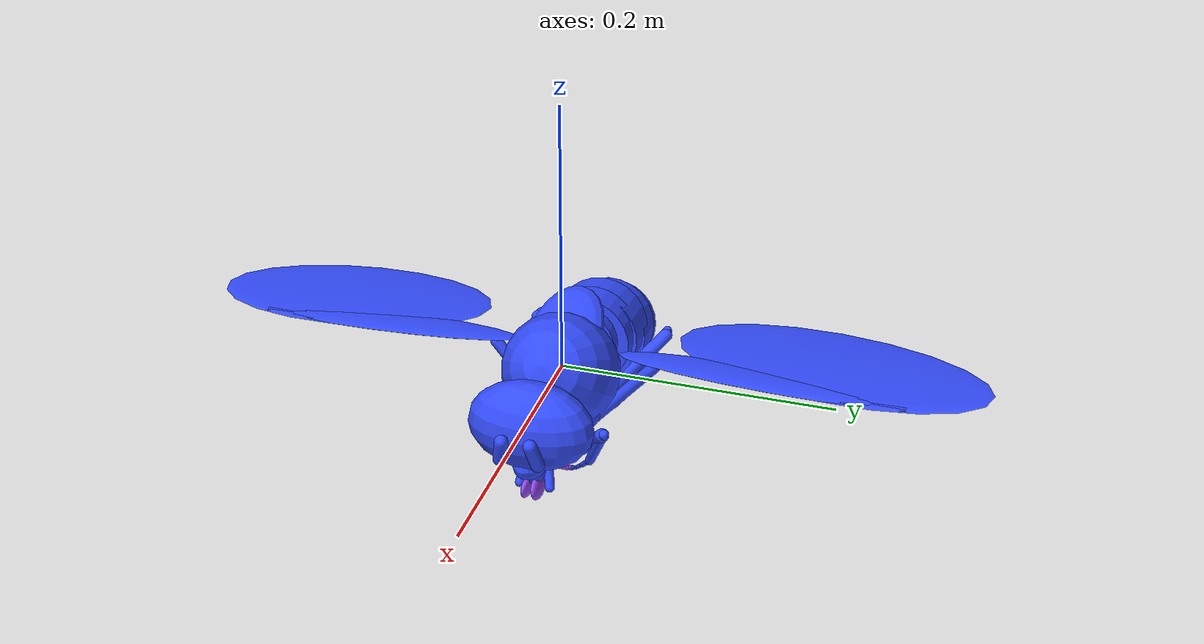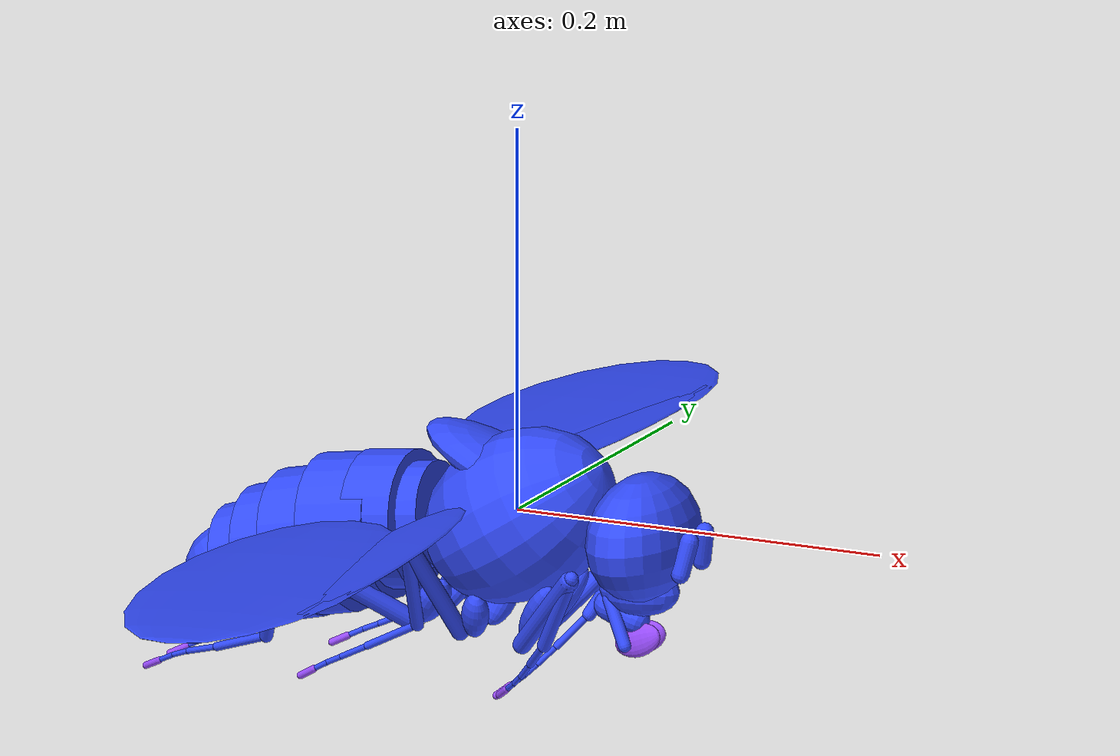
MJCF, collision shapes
<mujoco model="fruitfly">
  <compiler angle="radian"/>

  <option timestep="0.0001" gravity="0 0 -981" density="0.00128" viscosity="0.000185" cone="elliptic"/>

  <size njmax="300" nconmax="100" nkey="1"/>

  <visual>
    <global offwidth="3840" offheight="2160"/>
    <quality shadowsize="8192" offsamples="24"/>
    <headlight ambient="0.4 0.4 0.4" diffuse="0.8 0.8 0.8" specular="0.1 0.1 0.1"/>
    <map stiffness="10000" stiffnessrot="50000" force="2e-05"/>
    <scale jointwidth="0.01" framewidth="0.01"/>
  </visual>

  <statistic meansize="0.02"/>

  <default>
    <mesh scale="0.1 0.1 0.1"/>
    <geom friction="0.5" solref="0.0002" solimp="0.95 0.99 0.01"/>
    <general ctrllimited="true"/>
    <default class="body">
      <joint solreflimit="0.001" limited="true" armature="1e-06"/>
      <geom type="mesh" contype="0" conaffinity="0" group="1" density="0.478" material="body"/>
      <site size="0.01 0.005 0.005" group="3"/>
      <default class="collision">
        <geom type="capsule" contype="1" conaffinity="1" condim="1" group="4" density="0" material="blue"/>
        <default class="adhesion-collision">
          <geom friction="0.6" margin="0.0005" gap="0.0005" material="pink"/>
          <site type="capsule"/>
        </default>
        <default class="collision-membrane">
          <geom group="5"/>
        </default>
      </default>
      <default class="adhesion">
        <default class="adhesion_claw">
          <general group="3" ctrlrange="0 1" gainprm="0.985"/>
        </default>
        <default class="adhesion_labrum">
          <general group="3" ctrlrange="0 1"/>
        </default>
      </default>
      <default class="head">
        <joint stiffness="0.03" damping="0.001"/>
        <geom density="0.713"/>
        <general forcerange="-0.1 0.1" biastype="affine" gainprm="0.1" biasprm="0 -0.1"/>
        <default class="labrum">
          <general forcerange="-0.01 0.01" gainprm="0.01" biasprm="0 -0.01"/>
        </default>
      </default>
      <default class="antenna">
        <joint damping="0.0003"/>
        <general forcerange="-0.01 0.01" biastype="affine" gainprm="0.01" biasprm="0 -0.01"/>
        <default class="antenna_extend">
          <joint range="-0.2 0.5"/>
        </default>
        <default class="antenna_twist">
          <joint range="-0.1 0.09"/>
        </default>
        <default class="antenna_abduct">
          <joint range="-0.4 0.8"/>
        </default>
      </default>
      <default class="wing">
        <joint stiffness="0.01" damping="0.0005"/>
        <general ctrlrange="-1 1"/>
        <default class="yaw">
          <joint springref="1.5" range="-1.5 1.5"/>
          <general gainprm="3"/>
        </default>
        <default class="roll">
          <joint springref="0.7" range="-1 1.5"/>
          <general gainprm="2"/>
        </default>
        <default class="pitch">
          <joint springref="-1" range="-1.27 2.92"/>
        </default>
        <default class="wing-inertial">
          <geom type="box" rgba="0 0 0 0"/>
        </default>
        <default class="wing-fluid">
          <geom type="ellipsoid" group="3"/>
        </default>
      </default>
      <default class="abdomen">
        <joint group="3" stiffness="0.05" damping="0.01"/>
        <geom density="0.555"/>
        <general biastype="affine" gainprm="0.1" biasprm="0 -0.1"/>
        <default class="abduct_abdomen">
          <joint range="-0.1 0.1"/>
        </default>
        <default class="extend_abdomen">
          <joint range="-0.15 0.1"/>
        </default>
      </default>
      <default class="haltere">
        <joint range="-0.2 0.2"/>
      </default>
      <default class="leg">
        <joint stiffness="0.01" damping="0.01"/>
        <geom density="1.18"/>
        <default class="coxa">
          <general biastype="affine" gainprm="0.8" biasprm="0 -0.8"/>
          <default class="twist_coxa_T1">
            <joint range="-0.8 0.8"/>
            <general ctrlrange="-0.8 0.8"/>
          </default>
          <default class="abduct_coxa_T1">
            <joint range="-1 0.7"/>
            <general ctrlrange="-1 0.7"/>
          </default>
          <default class="extend_coxa_T1">
            <joint springref="0.0584" range="-0.2 1.7"/>
            <general ctrlrange="-0.2 1.7"/>
          </default>
          <default class="twist_coxa_T2">
            <joint springref="-0.742" range="-0.75 0.8"/>
            <general ctrlrange="-0.75 0.8"/>
          </default>
          <default class="abduct_coxa_T2">
            <joint springref="-0.292" range="-0.5 0.3"/>
            <general ctrlrange="-0.5 0.3"/>
          </default>
          <default class="extend_coxa_T2">
            <joint springref="0.408" range="-0.2 0.9"/>
            <general ctrlrange="-0.2 0.9"/>
          </default>
          <default class="twist_coxa_T3">
            <joint springref="0.00841" range="-0.15 0.8"/>
            <general ctrlrange="-0.15 0.8"/>
          </default>
          <default class="abduct_coxa_T3">
            <joint range="-0.9 0.25"/>
            <general ctrlrange="-0.9 0.25"/>
          </default>
          <default class="extend_coxa_T3">
            <joint springref="0.158" range="-0.3 1.3"/>
            <general ctrlrange="-0.3 1.3"/>
          </default>
        </default>
        <default class="femur">
          <general biastype="affine" gainprm="0.8" biasprm="0 -0.8"/>
          <default class="twist_femur">
            <joint range="-1 1"/>
            <general ctrlrange="-1 1"/>
            <default class="twist_femur_T2">
              <joint springref="0.608"/>
            </default>
            <default class="twist_femur_T3">
              <joint springref="0.558"/>
            </default>
          </default>
          <default class="extend_femur">
            <joint range="-0.15 2"/>
            <general ctrlrange="-0.15 2"/>
            <default class="extend_femur_T1">
              <joint springref="-0.142"/>
            </default>
            <default class="extend_femur_T2">
              <joint springref="0.208"/>
            </default>
          </default>
          <default class="extend_femur_T3">
            <joint springref="0.258" range="-0.7 1.5"/>
            <general ctrlrange="-0.7 1.5"/>
          </default>
        </default>
        <default class="tibia">
          <joint damping="0.004"/>
          <general biastype="affine" gainprm="0.4" biasprm="0 -0.4"/>
          <default class="extend_tibia">
            <joint springref="-1.29" range="-1.35 1.3"/>
            <general ctrlrange="-1.35 1.3"/>
            <default class="extend_tibia_T2">
              <joint springref="-1.34"/>
            </default>
            <default class="extend_tibia_T3">
              <joint springref="-0.292"/>
            </default>
          </default>
        </default>
        <default class="tarsus">
          <general biastype="affine" gainprm="0.4" biasprm="0 -0.4"/>
          <default class="extend_tarsus_T1">
            <joint springref="-0.242" range="-0.7 1.2"/>
            <general ctrlrange="-0.7 1.2"/>
          </default>
          <default class="extend_tarsus_T2">
            <joint springref="0.608" range="-1 1.8"/>
            <general ctrlrange="-1 1.8"/>
          </default>
          <default class="extend_tarsus_T3">
            <joint springref="0.258" range="-0.8 1.2"/>
            <general ctrlrange="-0.8 1.2"/>
          </default>
          <default class="extend_tarsus">
            <joint group="3" stiffness="0.1" range="-0.36 0.36" damping="0.002"/>
            <general ctrlrange="-0.36 0.36"/>
          </default>
        </default>
      </default>
    </default>
  </default>

  <asset>
    <material name="body" shininess="0.6" rgba="0.674 0.35 0.143 1"/>
    <material name="red" shininess="0.692" rgba="0.8 0.0279 0.00154 1"/>
    <material name="ocelli" shininess="1" rgba="0.128 0.0488 0.0154 1"/>
    <material name="black" shininess="0.727" rgba="0 0 0 1"/>
    <material name="bristle-brown" shininess="0.907" rgba="0 0 0 1"/>
    <material name="lower" shininess="0.6" rgba="0.799 0.61 0.386 1"/>
    <material name="brown" shininess="0.6" rgba="0.202 0.0782 0.0262 1"/>
    <material name="membrane" specular="0.62" shininess="0.907" rgba="0.539 0.686 0.8 0.4"/>
    <material name="blue" shininess="0.6" rgba="0.2 0.3 1 1"/>
    <material name="pink" rgba="0.6 0.3 1 1"/>
    <mesh name="head" content_type="model/stl" file="head_body.stl"/>
    <mesh name="head_red" content_type="model/stl" file="head_red.stl"/>
    <mesh name="head_ocelli" content_type="model/stl" file="head_ocelli.stl"/>
    <mesh name="head_black" content_type="model/stl" file="head_black.stl"/>
    <mesh name="haustellum" content_type="model/stl" file="haustellum_body.stl"/>
    <mesh name="haustellum_black" content_type="model/stl" file="haustellum_black.stl"/>
    <mesh name="rostrum" content_type="model/stl" file="rostrum_body.stl"/>
    <mesh name="rostrum_bristle-brown" content_type="model/stl" file="rostrum_bristle-brown.stl"/>
    <mesh name="labrum_left_lower" content_type="model/stl" file="labrum_left_lower.stl"/>
    <mesh name="wing_left_brown" content_type="model/stl" file="wing_left_brown.stl"/>
    <mesh name="wing_left_membrane" content_type="model/stl" file="wing_left_membrane.stl"/>
    <mesh name="antenna_left" content_type="model/stl" file="antenna_left_body.stl"/>
    <mesh name="antenna_left_black" content_type="model/stl" file="antenna_left_black.stl"/>
    <mesh name="haltere_left" content_type="model/stl" file="haltere_left_body.stl"/>
    <mesh name="labrum_right_lower" content_type="model/stl" file="labrum_right_lower.stl"/>
    <mesh name="wing_right_brown" content_type="model/stl" file="wing_right_brown.stl"/>
    <mesh name="wing_right_membrane" content_type="model/stl" file="wing_right_membrane.stl"/>
    <mesh name="antenna_right" content_type="model/stl" file="antenna_right_body.stl"/>
    <mesh name="antenna_right_black" content_type="model/stl" file="antenna_right_black.stl"/>
    <mesh name="haltere_right" content_type="model/stl" file="haltere_right_body.stl"/>
    <mesh name="thorax" content_type="model/stl" file="thorax_body.stl"/>
    <mesh name="thorax_black" content_type="model/stl" file="thorax_black.stl"/>
    <mesh name="abdomen_1" content_type="model/stl" file="abdomen_1_body.stl"/>
    <mesh name="abdomen_1_lower" content_type="model/stl" file="abdomen_1_lower.stl"/>
    <mesh name="abdomen_2" content_type="model/stl" file="abdomen_2_body.stl"/>
    <mesh name="abdomen_2_lower" content_type="model/stl" file="abdomen_2_lower.stl"/>
    <mesh name="abdomen_3" content_type="model/stl" file="abdomen_3_body.stl"/>
    <mesh name="abdomen_3_lower" content_type="model/stl" file="abdomen_3_lower.stl"/>
    <mesh name="abdomen_4" content_type="model/stl" file="abdomen_4_body.stl"/>
    <mesh name="abdomen_4_lower" content_type="model/stl" file="abdomen_4_lower.stl"/>
    <mesh name="abdomen_5" content_type="model/stl" file="abdomen_5_body.stl"/>
    <mesh name="abdomen_5_lower" content_type="model/stl" file="abdomen_5_lower.stl"/>
    <mesh name="abdomen_6" content_type="model/stl" file="abdomen_6_body.stl"/>
    <mesh name="abdomen_6_lower" content_type="model/stl" file="abdomen_6_lower.stl"/>
    <mesh name="abdomen_7" content_type="model/stl" file="abdomen_7_body.stl"/>
    <mesh name="abdomen_7_lower" content_type="model/stl" file="abdomen_7_lower.stl"/>
    <mesh name="abdomen_8" content_type="model/stl" file="abdomen_8_body.stl"/>
    <mesh name="tibia_T1_left" content_type="model/stl" file="tibia_T1_left_body.stl"/>
    <mesh name="tarsus_T1_1_left" content_type="model/stl" file="tarsus_T1_1_left_body.stl"/>
    <mesh name="tarsus_T1_2_left" content_type="model/stl" file="tarsus_T1_2_left_body.stl"/>
    <mesh name="tarsus_T1_3_left" content_type="model/stl" file="tarsus_T1_3_left_body.stl"/>
    <mesh name="tarsus_T1_4_left" content_type="model/stl" file="tarsus_T1_4_left_body.stl"/>
    <mesh name="tarsal_claw_T1_left_brown" content_type="model/stl" file="tarsal_claw_T1_left_brown.stl"/>
    <mesh name="tarsus_T2_2_left" content_type="model/stl" file="tarsus_T2_2_left_body.stl"/>
    <mesh name="tarsus_T2_3_left" content_type="model/stl" file="tarsus_T2_3_left_body.stl"/>
    <mesh name="tarsus_T2_4_left" content_type="model/stl" file="tarsus_T2_4_left_body.stl"/>
    <mesh name="tarsal_claw_T2_left_brown" content_type="model/stl" file="tarsal_claw_T2_left_brown.stl"/>
    <mesh name="tarsus_T2_1_left" content_type="model/stl" file="tarsus_T2_1_left_body.stl"/>
    <mesh name="tarsus_T3_2_left" content_type="model/stl" file="tarsus_T3_2_left_body.stl"/>
    <mesh name="tarsus_T3_3_left" content_type="model/stl" file="tarsus_T3_3_left_body.stl"/>
    <mesh name="tarsus_T3_4_left" content_type="model/stl" file="tarsus_T3_4_left_body.stl"/>
    <mesh name="tarsal_claw_T3_left_brown" content_type="model/stl" file="tarsal_claw_T3_left_brown.stl"/>
    <mesh name="tarsus_T3_1_left" content_type="model/stl" file="tarsus_T3_1_left_body.stl"/>
    <mesh name="tibia_T2_left" content_type="model/stl" file="tibia_T2_left_body.stl"/>
    <mesh name="tibia_T3_left" content_type="model/stl" file="tibia_T3_left_body.stl"/>
    <mesh name="femur_T1_left" content_type="model/stl" file="femur_T1_left_body.stl"/>
    <mesh name="femur_T2_left" content_type="model/stl" file="femur_T2_left_body.stl"/>
    <mesh name="femur_T3_left" content_type="model/stl" file="femur_T3_left_body.stl"/>
    <mesh name="femur_T1_right" content_type="model/stl" file="femur_T1_right_body.stl"/>
    <mesh name="tibia_T1_right" content_type="model/stl" file="tibia_T1_right_body.stl"/>
    <mesh name="tarsus_T1_1_right" content_type="model/stl" file="tarsus_T1_1_right_body.stl"/>
    <mesh name="tarsus_T1_2_right" content_type="model/stl" file="tarsus_T1_2_right_body.stl"/>
    <mesh name="tarsus_T1_3_right" content_type="model/stl" file="tarsus_T1_3_right_body.stl"/>
    <mesh name="tarsus_T1_4_right" content_type="model/stl" file="tarsus_T1_4_right_body.stl"/>
    <mesh name="tarsal_claw_T1_right_brown" content_type="model/stl" file="tarsal_claw_T1_right_brown.stl"/>
    <mesh name="femur_T2_right" content_type="model/stl" file="femur_T2_right_body.stl"/>
    <mesh name="tibia_T2_right" content_type="model/stl" file="tibia_T2_right_body.stl"/>
    <mesh name="tarsus_T2_1_right" content_type="model/stl" file="tarsus_T2_1_right_body.stl"/>
    <mesh name="tarsus_T2_2_right" content_type="model/stl" file="tarsus_T2_2_right_body.stl"/>
    <mesh name="tarsus_T2_3_right" content_type="model/stl" file="tarsus_T2_3_right_body.stl"/>
    <mesh name="tarsus_T2_4_right" content_type="model/stl" file="tarsus_T2_4_right_body.stl"/>
    <mesh name="tarsal_claw_T2_right_brown" content_type="model/stl" file="tarsal_claw_T2_right_brown.stl"/>
    <mesh name="femur_T3_right" content_type="model/stl" file="femur_T3_right_body.stl"/>
    <mesh name="tibia_T3_right" content_type="model/stl" file="tibia_T3_right_body.stl"/>
    <mesh name="tarsus_T3_1_right" content_type="model/stl" file="tarsus_T3_1_right_body.stl"/>
    <mesh name="tarsus_T3_2_right" content_type="model/stl" file="tarsus_T3_2_right_body.stl"/>
    <mesh name="tarsus_T3_3_right" content_type="model/stl" file="tarsus_T3_3_right_body.stl"/>
    <mesh name="tarsus_T3_4_right" content_type="model/stl" file="tarsus_T3_4_right_body.stl"/>
    <mesh name="tarsal_claw_T3_right_brown" content_type="model/stl" file="tarsal_claw_T3_right_brown.stl"/>
    <mesh name="coxa_T1_left" content_type="model/stl" file="coxa_T1_left_body.stl"/>
    <mesh name="coxa_T1_right" content_type="model/stl" file="coxa_T1_right_body.stl"/>
    <mesh name="coxa_T2_left" content_type="model/stl" file="coxa_T2_left_body.stl"/>
    <mesh name="coxa_T2_right" content_type="model/stl" file="coxa_T2_right_body.stl"/>
    <mesh name="coxa_T3_left" content_type="model/stl" file="coxa_T3_left_body.stl"/>
    <mesh name="coxa_T3_right" content_type="model/stl" file="coxa_T3_right_body.stl"/>
  </asset>

  <worldbody>
    <body name="thorax" childclass="body">
      <joint name="free" type="free" solreflimit="0.02" armature="0"/>
      <geom name="thorax" pos="-0.00791 0 -0.123" quat="0 0 0 -1" mass="0.00034" mesh="thorax"/>
      <geom name="thorax_collision" class="collision" size="0.0437 0.0437 0.0551" pos="0.00168 0 -0.00262" quat="0 -0.478922 0 -0.877857" type="ellipsoid"/>
      <geom name="thorax_collision2" class="collision" size="0.0499 0.028 0.0114" pos="-0.00445 0 0.0219" quat="0 -0.199 0 -0.98" type="ellipsoid"/>
      <geom name="thorax_black" pos="-0.00791 0 -0.123" quat="0 0 0 -1" mass="0" material="black" mesh="thorax_black"/>
      <site name="thorax" pos="0 0 0"/>
      <site name="hover_up_dir" pos="0.0262 0 0.0262" quat="0.915167 0 0.403074 0"/>
      <camera name="track1" pos="0.6 0.6 0.22" quat="0.312189 0.221134 0.533323 0.754457" mode="trackcom"/>
      <camera name="track2" pos="0 -1.1 0.1" quat="0.707107 0.707107 0 0" mode="trackcom"/>
      <camera name="track3" pos="-0.9 -0.9 0.9" quat="0.820164 0.425085 -0.176035 -0.340068" mode="trackcom"/>
      <camera name="back" pos="-0.462 0 0.297" quat="0.653281 0.270598 -0.270598 -0.653281" mode="track"/>
      <camera name="side" pos="-0.045 0.424 -0.035" quat="0 0 0.707107 0.707107" mode="track"/>
      <camera name="bottom" pos="0.01 0 -0.516" quat="0.0481814 0.705463 0.705463 0.0481814" mode="track"/>
      <camera name="hero" pos="0.271 0.27 -0.044" quat="0.308074 0.290615 0.621616 0.658959" mode="track"/>
      <light name="right" pos="0 -1 1" dir="0 0.707107 -0.707107" diffuse="0.3 0.3 0.3" mode="trackcom"/>
      <light name="left" pos="0 1 1" dir="0 -0.707107 -0.707107" diffuse="0.3 0.3 0.3" mode="trackcom"/>
      <light name="tracking" pos="0 0 1" dir="0 0 -1" mode="trackcom"/>
      <body name="head" childclass="head" pos="0.0567 3.81e-07 -0.00305" quat="0.701738 -0.0869676 0.0869676 -0.701738">
        <joint name="head_abduct" pos="0 0 0" axis="0 0 1" range="-0.2 0.2"/>
        <joint name="head_twist" pos="0 0 0" axis="0 1 0" range="-3 3"/>
        <joint name="head" pos="0 0 0" axis="1 0 0" range="-0.5 0.3"/>
        <geom name="head_collision" class="collision" size="0.0455 0.0262 0.0324" pos="0 0.0149 0.000875" quat="0.988771 0.149438 0 0" type="ellipsoid"/>
        <geom name="head" pos="4.11e-07 -0.0334 -0.132" quat="0.701738 0.0869676 0.0869676 -0.701738" mesh="head"/>
        <geom name="head_red" pos="4.11e-07 -0.0334 -0.132" quat="0.701738 0.0869676 0.0869676 -0.701738" material="red" mesh="head_red"/>
        <geom name="head_ocelli" pos="4.11e-07 -0.0334 -0.132" quat="0.701738 0.0869676 0.0869676 -0.701738" material="ocelli" mesh="head_ocelli"/>
        <geom name="head_black" pos="4.11e-07 -0.0334 -0.132" quat="0.701738 0.0869676 0.0869676 -0.701738" mass="0" material="black" mesh="head_black"/>
        <site name="head" pos="0 0.015 0" quat="0 0 0 1"/>
        <camera name="eye_right" pos="0.0219 0.0131 0" quat="0.473906 0.687863 -0.343932 -0.428915" fovy="140"/>
        <camera name="eye_left" pos="-0.0219 0.0131 0" quat="0.473906 0.687863 0.343932 0.428915" fovy="140"/>
        <body name="rostrum" pos="0 0.0368 -0.0235" quat="2.20085e-07 -1.21047e-07 0.192074 -0.98138">
          <joint name="rostrum" pos="0 0 0" axis="1 0 0" springref="0.8" range="-1.24 0.183"/>
          <geom name="rostrum" pos="-4e-07 0.106 -0.0742" quat="0.705377 0.0494264 -0.0494264 0.705377" mesh="rostrum"/>
          <geom name="rostrum_collision_right" class="collision" size="0.0035 0.0127195" pos="0.008765 0.02845 -0.0118" quat="0.981761 -0.158158 -0.105505 0"/>
          <geom name="rostrum_collision_left" class="collision" size="0.0035 0.0127195" pos="-0.008765 0.02845 -0.0118" quat="0.981761 -0.158158 0.105505 0"/>
          <geom name="rostrum_collision" class="collision" size="0.0131 0.0219 0.0131" pos="0 0.0175 0.00263" quat="0.99875 0.0499792 0 0" type="ellipsoid"/>
          <geom name="rostrum_bristle-brown" pos="-4e-07 0.106 -0.0742" quat="0.705377 0.0494264 -0.0494264 0.705377" material="bristle-brown" mesh="rostrum_bristle-brown"/>
          <body name="haustellum" pos="0 0.0377 0" quat="2.32971e-07 -1.5598e-07 -0.346956 0.937881">
            <joint name="haustellum_abduct" pos="0 0 0" axis="0 0 1" range="-0.0873 0.0873"/>
            <joint name="haustellum" pos="0 0 0" axis="1 0 0" springref="0.8" range="-1.59 0.7"/>
            <geom name="haustellum" pos="4.24e-07 -0.00352 -0.101" quat="0.678834 0.197952 0.197952 -0.678834" mesh="haustellum"/>
            <geom name="haustellum_collision" class="collision" size="0.00788 0.00788" pos="0 0.0123 -0.000948" quat="0.633074 0.774091 0 0"/>
            <geom name="haustellum_black" pos="4.24e-07 -0.00352 -0.101" quat="0.678834 0.197952 0.197952 -0.678834" mass="0" material="black" mesh="haustellum_black"/>
            <body name="labrum_left" childclass="labrum" pos="-0.00263 0.0182 0" quat="0.74088 -0.0141977 -0.590904 0.318948">
              <joint name="labrum_left" pos="0 0 0" axis="1 0 0" range="-0.00524 1.05"/>
              <geom name="labrum_left_lower" pos="-0.0977 0.0216 -0.0249" quat="-0.166008 0.181008 -0.494022 0.834038" material="lower" mesh="labrum_left_lower"/>
              <geom name="labrum_left_lower_collision" class="adhesion-collision" size="0.0035 0.00875 0.0131" pos="-0.000603 0.0106 -0.00438" quat="-0.173934 -0.714729 0.0875668 0.671745" type="ellipsoid"/>
            </body>
            <body name="labrum_right" childclass="labrum" pos="0.00263 0.0182 0" quat="0.69878 0.00273914 0.641798 -0.315901">
              <joint name="labrum_right" pos="0 0 0" axis="1 0 0" range="-0.00524 1.05"/>
              <geom name="labrum_right_lower" pos="0.1 0.022 -0.0113" quat="-0.817018 -0.509011 0.236005 0.133003" material="lower" mesh="labrum_right_lower"/>
              <geom name="labrum_right_lower_collision" class="adhesion-collision" size="0.0035 0.00875 0.0131" pos="0.00116 0.0106 -0.00414" quat="-0.175083 -0.668317 -0.0724344 -0.719341" type="ellipsoid"/>
            </body>
          </body>
        </body>
        <body name="antenna_left" pos="-0.00795 0.0378 0.0129" quat="0.78447 -0.589601 -0.0127914 0.19187">
          <joint name="antenna_abduct_left" class="antenna_abduct" pos="0 0 0" axis="0 0 1"/>
          <joint name="antenna_twist_left" class="antenna_twist" pos="0 0 0" axis="0 1 0"/>
          <joint name="antenna_left" class="antenna_extend" pos="0 0 0" axis="1 0 0"/>
          <geom name="antenna_left" pos="0.0148 0.116 -0.112" quat="0.36391 0.489878 0.473882 -0.634842" mesh="antenna_left"/>
          <geom name="antenna_left_collision" class="collision" size="0.00481 0.00875" pos="0 0.0114 0.00263" quat="0.634163 -0.773199 0 0"/>
          <geom name="antenna_left_black" pos="0.0148 0.116 -0.112" quat="0.36391 0.489878 0.473882 -0.634842" mass="0" material="black" mesh="antenna_left_black"/>
        </body>
        <body name="antenna_right" pos="0.00861 0.038 0.0129" quat="0.589601 0.78447 -0.19187 -0.0127914">
          <joint name="antenna_abduct_right" class="antenna_abduct" pos="0 0 0" axis="0 0 1"/>
          <joint name="antenna_twist_right" class="antenna_twist" pos="0 0 0" axis="0 1 0"/>
          <joint name="antenna_right" class="antenna_extend" pos="0 0 0" axis="1 0 0"/>
          <geom name="antenna_right" pos="-0.0153 -0.116 0.112" quat="-0.473882 0.634842 0.36391 0.489878" mesh="antenna_right"/>
          <geom name="antenna_right_collision" class="collision" size="0.00481 0.00875" pos="-0.000616 -0.0114 -0.00231" quat="0.78177 0.622817 -0.0257924 -0.0163952"/>
          <geom name="antenna_right_black" pos="-0.0153 -0.116 0.112" quat="-0.473882 0.634842 0.36391 0.489878" mass="0" material="black" mesh="antenna_right_black"/>
        </body>
      </body>
      <body name="wing_left" childclass="wing" pos="-0.00694 0.0432 0.0091" quat="0 0.382683 0 0.92388">
        <joint name="wing_yaw_left" class="yaw" pos="0 0 0" axis="0 0 1" springref="1.5" range="-1.8 1.85" damping="0.00776923"/>
        <joint name="wing_roll_left" class="roll" pos="0 0 0" axis="1 0 0" springref="0.7" range="-1.5 1.5" damping="0.00776923"/>
        <joint name="wing_pitch_left" class="pitch" pos="0 0 0" axis="0 1 0" springref="-1" range="-1.5 4.1" damping="0.00776923"/>
        <geom name="wing_left_brown" pos="-0.0968 0.0432 -0.09" quat="-0.915167 0 -0.403074 0" mass="0" material="brown" mesh="wing_left_brown"/>
        <geom name="wing_left_brown_collision" class="collision" size="0.00219 0.0175 0.114" pos="0.00186 -0.11 -0.00166" quat="-0.672784 -0.646792 0.259917 -0.24792" type="ellipsoid"/>
        <geom name="wing_left_membrane" pos="-0.0968 0.0432 -0.09" quat="-0.915167 0 -0.403074 0" mass="0" material="membrane" mesh="wing_left_membrane"/>
        <geom name="wing_left_membrane_collision" class="collision-membrane" size="0.00306 0.0551 0.114" pos="0.0263 -0.148 -0.0289" quat="-0.684844 -0.633856 0.26494 -0.242945" type="ellipsoid"/>
        <geom name="wing_left_fluid" class="wing-fluid" size="0.0005 0.0551 0.114" pos="0.0263 -0.148 -0.0289" quat="-0.684844 -0.633856 0.26494 -0.242945" fluidshape="ellipsoid" fluidcoef="1 0.5 1.5 1.7 1" mass="0"/>
        <geom name="wing_left_inertial" class="wing-inertial" size="0.0005 0.0551 0.114" pos="0.0263 -0.148 -0.0289" quat="-0.684844 -0.633856 0.26494 -0.242945" mass="8e-06"/>
      </body>
      <body name="wing_right" childclass="wing" pos="-0.00694 -0.0432 0.0091" quat="0 0.92388 0 -0.382683">
        <joint name="wing_yaw_right" class="yaw" pos="0 0 0" axis="0 0 1" springref="1.5" range="-1.8 1.85" damping="0.00776923"/>
        <joint name="wing_roll_right" class="roll" pos="0 0 0" axis="1 0 0" springref="0.7" range="-1.5 1.5" damping="0.00776923"/>
        <joint name="wing_pitch_right" class="pitch" pos="0 0 0" axis="0 1 0" springref="-1" range="-1.5 4.1" damping="0.00776923"/>
        <geom name="wing_right_brown" pos="0.0968 -0.0432 0.09" quat="-0.403074 0 0.915167 0" mass="0" material="brown" mesh="wing_right_brown"/>
        <geom name="wing_right_brown_collision" class="collision" size="0.00219 0.0175 0.114" pos="-0.00186 0.11 0.00166" quat="0.24792 0.259917 0.646792 -0.672784" type="ellipsoid"/>
        <geom name="wing_right_membrane" pos="0.0968 -0.0432 0.09" quat="-0.403074 0 0.915167 0" mass="0" material="membrane" mesh="wing_right_membrane"/>
        <geom name="wing_right_membrane_collision" class="collision-membrane" size="0.00306 0.0551 0.114" pos="-0.0263 0.148 0.0289" quat="0.242945 0.26494 0.633856 -0.684844" type="ellipsoid"/>
        <geom name="wing_right_fluid" class="wing-fluid" size="0.0005 0.0551 0.114" pos="-0.0263 0.148 0.0289" quat="0.242945 0.26494 0.633856 -0.684844" fluidshape="ellipsoid" fluidcoef="1 0.5 1.5 1.7 1" mass="0"/>
        <geom name="wing_right_inertial" class="wing-inertial" size="0.0005 0.0551 0.114" pos="-0.0263 0.148 0.0289" quat="0.242945 0.26494 0.633856 -0.684844" mass="8e-06"/>
      </body>
      <body name="abdomen" childclass="abdomen" pos="-0.0447 -0.000555 0.00428" quat="-0.703905 -0.0858884 -0.0852884 -0.699905">
        <joint name="abdomen_abduct" class="abduct_abdomen" pos="0 0 0" axis="0 0 1"/>
        <joint name="abdomen" class="extend_abdomen" pos="0 0 0" axis="1 0 0"/>
        <geom name="abdomen" pos="0.000758 -0.0663 -0.115" quat="0.699905 -0.0852884 0.0858884 0.703905" mesh="abdomen_1"/>
        <geom name="abdomen_lower" pos="0.000758 -0.0663 -0.115" quat="0.699905 -0.0852884 0.0858884 0.703905" material="lower" mesh="abdomen_1_lower"/>
        <geom name="abdomen_collision" class="collision" size="0.0281 0.0102" pos="-0.000187 0.00646 -0.0146" quat="0.0104007 -0.0205014 0.824058 0.56604" type="cylinder"/>
        <body name="abdomen_2" pos="0 0.0119 0" quat="0.981379 -0.192074 -0.000269104 0.00144056">
          <joint name="abdomen_abduct_2" class="abduct_abdomen" pos="0 0 0" axis="0 0 1"/>
          <joint name="abdomen_2" class="extend_abdomen" pos="0 0 0" axis="1 0 0"/>
          <geom name="abdomen_2" pos="0.000532 -0.0293 -0.136" quat="0.704298 0.0507215 -0.0503213 0.706299" mesh="abdomen_2"/>
          <geom name="abdomen_2_lower" pos="0.000532 -0.0293 -0.136" quat="0.704298 0.0507215 -0.0503213 0.706299" material="lower" mesh="abdomen_2_lower"/>
          <geom name="abdomen_2_collision" class="collision" size="0.0367 0.0142" pos="-0.000182 0.0166 -0.0177" quat="-0.0110988 0.0102989 0.694925 0.718923" type="cylinder"/>
          <body name="abdomen_3" pos="0 0.0212 0" quat="0.995861 -0.0908873 6.68907e-05 0.000524927">
            <joint name="abdomen_abduct_3" class="abduct_abdomen" pos="0 0 0" axis="0 0 1"/>
            <joint name="abdomen_3" class="extend_abdomen" pos="0 0 0" axis="1 0 0"/>
            <geom name="abdomen_3" pos="0.000511 -0.0251 -0.143" quat="0.69686 0.113977 -0.113977 0.69886" mesh="abdomen_3"/>
            <geom name="abdomen_3_lower" pos="0.000511 -0.0251 -0.143" quat="0.69686 0.113977 -0.113977 0.69886" material="lower" mesh="abdomen_3_lower"/>
            <geom name="abdomen_3_collision" class="collision" size="0.0389 0.0194" pos="3.29e-05 0.0198 -0.0174" quat="0.709822 -0.590852 0.23894 0.299925" type="cylinder"/>
            <body name="abdomen_4" pos="0 0.0313 0" quat="0.999448 -0.0332149 0.000147066 -0.000229103">
              <joint name="abdomen_abduct_4" class="abduct_abdomen" pos="0 0 0" axis="0 0 1"/>
              <joint name="abdomen_4" class="extend_abdomen" pos="0 0 0" axis="1 0 0"/>
              <geom name="abdomen_4" pos="0.000577 -0.0468 -0.146" quat="0.692624 0.136926 -0.137925 0.694623" mesh="abdomen_4"/>
              <geom name="abdomen_4_lower" pos="0.000577 -0.0468 -0.146" quat="0.692624 0.136926 -0.137925 0.694623" material="lower" mesh="abdomen_4_lower"/>
              <geom name="abdomen_4_collision" class="collision" size="0.0396 0.0176" pos="9.67e-05 0.015 -0.0192" quat="0.018604 -0.0235051 0.637138 0.770167" type="cylinder"/>
              <body name="abdomen_5" pos="0 0.0262 0" quat="0.999322 -0.0368119 -4.72152e-05 -0.000327105">
                <joint name="abdomen_abduct_5" class="abduct_abdomen" pos="0 0 0" axis="0 0 1"/>
                <joint name="abdomen_5" class="extend_abdomen" pos="0 0 0" axis="1 0 0"/>
                <geom name="abdomen_5" pos="0.000607 -0.062 -0.151" quat="0.687059 0.163014 -0.163014 0.689059" mesh="abdomen_5"/>
                <geom name="abdomen_5_lower" pos="0.000607 -0.062 -0.151" quat="0.687059 0.163014 -0.163014 0.689059" material="lower" mesh="abdomen_5_lower"/>
                <geom name="abdomen_5_collision" class="collision" size="0.0371 0.016" pos="0.000282 0.0105 -0.0187" quat="0.0261941 -0.0205954 0.62386 0.780825" type="cylinder"/>
                <body name="abdomen_6" pos="0 0.0213 0" quat="0.997807 -0.0661872 0.00015597 -0.000350932">
                  <joint name="abdomen_abduct_6" class="abduct_abdomen" pos="0 0 0" axis="0 0 1"/>
                  <joint name="abdomen_6" class="extend_abdomen" pos="0 0 0" axis="1 0 0"/>
                  <geom name="abdomen_6" pos="0.000707 -0.0626 -0.161" quat="0.674292 0.20809 -0.20809 0.677294" mesh="abdomen_6"/>
                  <geom name="abdomen_6_lower" pos="0.000707 -0.0626 -0.161" quat="0.674292 0.20809 -0.20809 0.677294" material="lower" mesh="abdomen_6_lower"/>
                  <geom name="abdomen_6_collision" class="collision" size="0.0334 0.0141" pos="-0.000157 0.00942 -0.017" quat="-0.00291984 0.00200989 0.591967 0.805955" type="cylinder"/>
                  <body name="abdomen_7" pos="0 0.0182 0" quat="0.994787 -0.101978 -1.78962e-06 -0.00018696">
                    <joint name="abdomen_abduct_7" class="abduct_abdomen" pos="0 0 0" axis="0 0 1"/>
                    <joint name="abdomen_7" class="extend_abdomen" pos="0 0 0" axis="1 0 0"/>
                    <geom name="abdomen_8" pos="0.000731 -0.0464 -0.174" quat="0.649012 0.276005 -0.276005 0.653012" mesh="abdomen_8"/>
                    <geom name="abdomen_7" pos="0.000731 -0.0464 -0.174" quat="0.649012 0.276005 -0.276005 0.653012" mesh="abdomen_7"/>
                    <geom name="abdomen_7_collision" class="collision" size="0.0262" pos="-3.83e-05 0.0134 -0.0108" type="sphere"/>
                    <geom name="abdomen_7_lower" pos="0.000731 -0.0464 -0.174" quat="0.649012 0.276005 -0.276005 0.653012" material="lower" mesh="abdomen_7_lower"/>
                  </body>
                </body>
              </body>
            </body>
          </body>
        </body>
      </body>
      <body name="haltere_left" childclass="haltere" pos="-0.0386 0.0247 -0.00866" quat="0.290812 -0.203868 0.825466 0.438716">
        <joint name="haltere_left" pos="0 0 0" axis="1 0 0" stiffness="4.00119" damping="0.000400119"/>
        <geom name="haltere_left" pos="0.0545 -0.101 0.0395" quat="-0.438716 0.825466 0.203868 -0.290812" mesh="haltere_left"/>
      </body>
      <body name="haltere_right" childclass="haltere" pos="-0.0386 -0.0247 -0.00866" quat="-0.438017 -0.829033 0.206008 -0.280011">
        <joint name="haltere_right" pos="0 0 0" axis="1 0 0" stiffness="4.00123" damping="0.000400123"/>
        <geom name="haltere_right" pos="-0.0528 -0.101 0.0405" quat="0.280011 0.206008 0.829033 0.438017" mesh="haltere_right"/>
      </body>
      <body name="coxa_T1_left" childclass="leg" pos="0.0317 0.0209 -0.0272" quat="0.554851 -0.771272 0.311592 0.0138128">
        <geom name="coxa_T1_left" pos="0.0131 0.104 0.0119" quat="0.0229041 -0.311056 -0.787142 0.532096" mesh="coxa_T1_left"/>
        <geom name="coxa_T1_left_collision" class="collision" size="0.00679 0.00752 0.0208" pos="-2.04e-05 0.0261 -0.000454" quat="-0.416895 -0.382904 -0.531867 0.629842" type="ellipsoid"/>
        <body name="femur_T1_left" pos="0 0.0437 0" quat="0 0 0.182647 0.983179">
          <geom name="femur_T1_left" pos="-0.0131 -0.0472 0.04" quat="0.316016 -0.896046 0.295015 -0.101005" mesh="femur_T1_left"/>
          <geom name="femur_T1_left_collision" class="collision" size="0.005 0.0318875" pos="0.001315 0.034415 0.00219" quat="0.730985 0.68181 0.0282076 0"/>
          <body name="tibia_T1_left" pos="0 0.0697 0" quat="0.245928 0.0176242 0.957837 -0.147505">
            <geom name="tibia_T1_left" pos="-0.00315 -0.0396 0.118" quat="-0.183071 0.354138 0.79731 0.453176" mesh="tibia_T1_left"/>
            <geom name="tibia_T1_left_collision" class="collision" size="0.00362 0.025515" pos="0 -0.0255 0.000875" quat="0.694876 -0.719129 0 0"/>
            <body name="tarsus_T1_left" pos="0 -0.051 0.00175" quat="0.159193 0.986086 0.000969394 0.0478714">
              <geom name="tarsus_T1_left" pos="0.00797 -0.00233 -0.116" quat="-0.373037 -0.231023 -0.468046 0.767076" mesh="tarsus_T1_1_left"/>
              <geom name="tarsus_T1_left_collision" class="collision" size="0.00204 0.0117825" pos="-8.25e-05 0.01175 0.00087" quat="0.6805 0.73273 0.0051447 0"/>
              <site name="tarsus_T1_left" pos="0 0 0"/>
              <body name="tarsus2_T1_left" pos="-0.000165 0.0235 0.00174" quat="1 0 0 0">
                <geom name="tarsus2_T1_left" pos="0.00813 -0.0258 -0.118" quat="0.373037 0.231023 0.468046 -0.767076" mesh="tarsus_T1_2_left"/>
                <geom name="tarsus2_T1_left_collision" class="collision" size="0.00159 0.00680591" pos="5.65e-05 0.0068 0.000278" quat="0.692515 0.721379 -0.00599381 0"/>
                <body name="tarsus3_T1_left" pos="0.000113 0.0136 0.000556" quat="1 0 0 0">
                  <geom name="tarsus3_T1_left" pos="0.00802 -0.0394 -0.119" quat="-0.373037 -0.231023 -0.468046 0.767076" mesh="tarsus_T1_3_left"/>
                  <geom name="tarsus3_T1_left_collision" class="collision" size="0.00149 0.00454789" pos="-0.0001275 0.004545 0.0001" quat="0.69929 0.714557 0.0200453 0"/>
                  <body name="tarsus4_T1_left" pos="-0.000255 0.00909 0.0002" quat="1 0 0 0">
                    <geom name="tarsus4_T1_left" pos="0.00827 -0.0485 -0.119" quat="0.373037 0.231023 0.468046 -0.767076" mesh="tarsus_T1_4_left"/>
                    <geom name="tarsus4_T1_left_collision" class="collision" size="0.00148 0.00454821" pos="-3.56e-05 0.00453 -0.000405" quat="0.737918 0.674869 0.00530361 0"/>
                    <body name="claw_T1_left" pos="-7.12e-05 0.00906 -0.00081" quat="1 0 0 0">
                      <geom name="tarsal_claw_T1_left" pos="0.00835 -0.0575 -0.118" quat="-0.373037 -0.231023 -0.468046 0.767076" material="brown" mesh="tarsal_claw_T1_left_brown"/>
                      <geom name="tarsal_claw_T1_left_collision" class="adhesion-collision" size="0.00199 0.00454821" pos="-3.56e-05 0.00453 -0.000405" quat="0.737918 0.674869 0.00530361 0"/>
                      <site name="claw_T1_left" class="adhesion-collision" pos="-3.92e-05 0.004985 -0.0004455" quat="0.737906 0.674883 0.005307 0" size="0.00219 0.00500502"/>
                    </body>
                  </body>
                </body>
              </body>
            </body>
          </body>
        </body>
      </body>
      <body name="coxa_T1_right" childclass="leg" pos="0.0317 -0.0209 -0.0272" quat="-0.31847 -0.0203041 0.565324 0.76064">
        <geom name="coxa_T1_right" pos="-0.0104 -0.105 -0.00761" quat="-0.776821 0.542875 0.0109975 0.318927" mesh="coxa_T1_right"/>
        <geom name="coxa_T1_right_collision" class="collision" size="0.00679 0.00752 0.0208" pos="0.00061 -0.026 0.00153" quat="-0.507878 0.627849 0.446892 0.384907" type="ellipsoid"/>
        <body name="femur_T1_right" pos="0 -0.0436 0" quat="0 0 0.191948 0.981405">
          <geom name="femur_T1_right" pos="0.0104 0.0492 -0.0376" quat="-0.309988 0.0725973 0.320988 -0.891966" mesh="femur_T1_right"/>
          <geom name="femur_T1_right_collision" class="collision" size="0.005 0.0319373" pos="-0.001315 -0.034465 -0.00219" quat="0.682432 -0.730326 -0.0301674 0"/>
          <body name="tibia_T1_right" pos="0 -0.0698 0" quat="0.219156 0.0202645 0.965481 -0.139305">
            <geom name="tibia_T1_right" pos="0.00407 0.0384 -0.119" quat="-0.797757 -0.449863 -0.183944 0.356891" mesh="tibia_T1_right"/>
            <geom name="tibia_T1_right_collision" class="collision" size="0.00362 0.0257649" pos="0 0.02575 -0.000875" quat="0.719014 0.694996 0 0"/>
            <body name="tarsus_T1_right" pos="0 0.0515 -0.00175" quat="0.193988 0.978386 -0.00470346 -0.0714653">
              <geom name="tarsus_T1_right" pos="0.0207 -0.00479 0.116" quat="-0.528967 0.777951 0.298981 0.15999" mesh="tarsus_T1_1_right"/>
              <geom name="tarsus_T1_right_collision" class="collision" size="0.00204 0.0113887" pos="-0.0004825 -0.01135 -0.000805" quat="0.731671 -0.681043 0.0289518 0"/>
              <site name="tarsus_T1_right" pos="0 0 0"/>
              <body name="tarsus2_T1_right" pos="-0.000965 -0.0227 -0.00161">
                <geom name="tarsus2_T1_right" pos="0.0217 0.0179 0.118" quat="0.528967 -0.777951 -0.298981 -0.15999" mesh="tarsus_T1_2_right"/>
                <geom name="tarsus2_T1_right_collision" class="collision" size="0.00159 0.00685206" pos="7.15e-05 -0.0068 -0.00084" quat="0.749197 -0.662311 -0.00696401 0"/>
                <body name="tarsus3_T1_right" pos="0.000143 -0.0136 -0.00168">
                  <geom name="tarsus3_T1_right" pos="0.0215 0.0316 0.12" quat="-0.528967 0.777951 0.298981 0.15999" mesh="tarsus_T1_3_right"/>
                  <geom name="tarsus3_T1_right_collision" class="collision" size="0.00149 0.00451132" pos="0.0002185 -0.004495 -0.000315" quat="0.731377 -0.681169 -0.0331113 0"/>
                  <body name="tarsus4_T1_right" pos="0.000437 -0.00899 -0.00063">
                    <geom name="tarsus4_T1_right" pos="0.0211 0.0405 0.12" quat="0.528967 -0.777951 -0.298981 -0.15999" mesh="tarsus_T1_4_right"/>
                    <geom name="tarsus4_T1_right_collision" class="collision" size="0.00148 0.00451174" pos="0.0003825 -0.004495 6.7e-05" quat="0.701837 -0.709773 -0.0603978 0"/>
                    <body name="claw_T1_right" pos="0.000765 -0.00899 0.000134">
                      <geom name="tarsal_claw_T1_right" pos="0.0203 0.0495 0.12" quat="-0.528967 0.777951 0.298981 0.15999" material="brown" mesh="tarsal_claw_T1_right_brown"/>
                      <geom name="tarsal_claw_T1_right_collision" class="adhesion-collision" size="0.00199 0.00451174" pos="0.0003825 -0.004495 6.7e-05" quat="0.701837 -0.709773 -0.0603978 0"/>
                      <site name="claw_T1_right" class="adhesion-collision" pos="0.0004205 -0.00494 7.4e-05" quat="0.70181 -0.709797 -0.0604189 0" size="0.00219 0.00495842"/>
                    </body>
                  </body>
                </body>
              </body>
            </body>
          </body>
        </body>
      </body>
      <body name="coxa_T2_left" childclass="leg" pos="-0.0144 0.0241 -0.0425" quat="0.515037 -0.768023 -0.070763 0.373993">
        <geom name="coxa_T2_left" pos="0.0287 0.0682 0.0404" quat="0.0722138 -0.126024 -0.917175 0.371071" mesh="coxa_T2_left"/>
        <geom name="coxa_T2_left_collision" class="collision" size="0.00788 0.007 0.0149" pos="0.000349 0.0143 -0.00216" quat="0.707107 -0.707107 0 0" type="ellipsoid"/>
        <body name="femur_T2_left" pos="0 0.0281 0" quat="-0.00728018 -0.299251 0.219682 0.928513">
          <geom name="femur_T2_left" pos="-0.0287 -0.0285 0.0493" quat="0.250996 -0.956984 0.115998 -0.0878986" mesh="femur_T2_left"/>
          <geom name="femur_T2_left_collision" class="collision" size="0.00469 0.0381978" pos="0 0.040765 0.00219" quat="0.727095 0.686537 0 0"/>
          <body name="tibia_T2_left" pos="0 0.083 0" quat="0.135706 -0.00107515 0.975298 -0.174289">
            <geom name="tibia_T2_left" pos="0.0202 -0.0418 0.116" quat="-0.088385 0.151974 0.869852 0.460922" mesh="tibia_T2_left"/>
            <geom name="tibia_T2_left_collision" class="collision" size="0.00352 0.0334115" pos="0 -0.0334 0.000875" quat="0.697786 -0.716306 0 0"/>
            <body name="tarsus_T2_left" pos="0 -0.0668 0.00175" quat="-0.434119 0.889163 -0.0634372 -0.130023">
              <geom name="tarsus_T2_left" pos="-0.0134 -0.0581 -0.103" quat="-0.0774116 0.0502075 -0.342051 0.93514" mesh="tarsus_T2_1_left"/>
              <geom name="tarsus_T2_left_collision" class="collision" size="0.00208 0.0171151" pos="0.0002355 0.0171 0.00068" quat="0.692917 0.720949 -0.00992885 0"/>
              <site name="tarsus_T2_left" pos="0 0 0"/>
              <body name="tarsus2_T2_left" pos="0.000471 0.0342 0.00136">
                <geom name="tarsus2_T2_left" pos="-0.0138 -0.0923 -0.104" quat="0.0774116 -0.0502075 0.342051 -0.93514" mesh="tarsus_T2_2_left"/>
                <geom name="tarsus2_T2_left_collision" class="collision" size="0.00162 0.00890059" pos="1.21e-05 0.0089 0.0001015" quat="0.703063 0.711127 -0.000966812 0"/>
                <body name="tarsus3_T2_left" pos="2.42e-05 0.0178 0.000203">
                  <geom name="tarsus3_T2_left" pos="-0.0139 -0.11 -0.105" quat="-0.0774116 0.0502075 -0.342051 0.93514" mesh="tarsus_T2_3_left"/>
                  <geom name="tarsus3_T2_left_collision" class="collision" size="0.00149 0.00495717" pos="-1.555e-05 0.004955 0.000146" quat="0.696616 0.717441 0.0022515 0"/>
                  <body name="tarsus4_T2_left" pos="-3.11e-05 0.00991 0.000292">
                    <geom name="tarsus4_T2_left" pos="-0.0138 -0.12 -0.105" quat="0.0774116 -0.0502075 0.342051 -0.93514" mesh="tarsus_T2_4_left"/>
                    <geom name="tarsus4_T2_left_collision" class="collision" size="0.00146 0.00495666" pos="1.8e-05 0.004955 -0.000127" quat="0.716108 0.697985 -0.00253556 0"/>
                    <body name="claw_T2_left" pos="3.6e-05 0.00991 -0.000254">
                      <geom name="tarsal_claw_T2_left" pos="-0.0139 -0.13 -0.105" quat="-0.0774116 0.0502075 -0.342051 0.93514" material="brown" mesh="tarsal_claw_T2_left_brown"/>
                      <geom name="tarsal_claw_T2_left_collision" class="adhesion-collision" size="0.002 0.00495666" pos="1.8e-05 0.004955 -0.000127" quat="0.716108 0.697985 -0.00253556 0"/>
                      <site name="claw_T2_left" class="adhesion-collision" pos="1.98e-05 0.00545 -0.00014" quat="0.716128 0.697964 -0.00253572 0" size="0.0022 0.00545183"/>
                    </body>
                  </body>
                </body>
              </body>
            </body>
          </body>
        </body>
      </body>
      <body name="coxa_T2_right" childclass="leg" pos="-0.0144 -0.0241 -0.0425" quat="0.0720072 0.372206 0.517509 0.767113">
        <geom name="coxa_T2_right" pos="-0.0285 -0.0685 -0.0403" quat="-0.916076 0.374031 -0.0709059 0.12601" mesh="coxa_T2_right"/>
        <geom name="coxa_T2_right_collision" class="collision" size="0.00788 0.007 0.0149" pos="-0.000335 -0.0143 0.00206" quat="0.707107 0.707107 0 0" type="ellipsoid"/>
        <body name="femur_T2_right" pos="0 -0.0282 0" quat="-0.00909905 -0.299201 0.225322 0.92716">
          <geom name="femur_T2_right" pos="0.0285 0.0282 -0.0496" quat="-0.115024 0.0871181 0.247051 -0.958199" mesh="femur_T2_right"/>
          <geom name="femur_T2_right_collision" class="collision" size="0.00469 0.0386471" pos="0 -0.041215 -0.00219" quat="0.68678 -0.726865 0 0"/>
          <body name="tibia_T2_right" pos="0 -0.084 0" quat="0.13472 0.0247312 0.975863 -0.170087">
            <geom name="tibia_T2_right" pos="-0.0138 0.0423 -0.118" quat="-0.869879 -0.468935 -0.0639911 0.138981" mesh="tibia_T2_right"/>
            <geom name="tibia_T2_right_collision" class="collision" size="0.00353 0.0332615" pos="0 0.03325 -0.000875" quat="0.716347 0.697744 0 0"/>
            <body name="tarsus_T2_right" pos="0 0.0665 -0.00175" quat="-0.437097 0.892121 -0.0502394 -0.102676">
              <geom name="tarsus_T2_right" pos="0.0128 0.0578 0.104" quat="-0.344136 0.934368 0.0789311 -0.0479189" mesh="tarsus_T2_1_right"/>
              <geom name="tarsus_T2_right_collision" class="collision" size="0.00208 0.0169588" pos="-0.0001835 -0.01695 -0.000515" quat="0.717763 -0.696247 0.00753754 0"/>
              <site name="tarsus_T2_right" pos="0 0 0"/>
              <body name="tarsus2_T2_right" pos="-0.000367 -0.0339 -0.00103" quat="1 0 0 0">
                <geom name="tarsus2_T2_right" pos="0.0132 0.0917 0.105" quat="0.344138 -0.934376 -0.0788317 0.0479193" mesh="tarsus_T2_2_right"/>
                <geom name="tarsus2_T2_right_collision" class="collision" size="0.00162 0.00885432" pos="8.6e-06 -0.00885 -0.0002765" quat="0.718063 -0.695978 -0.000676318 0"/>
                <body name="tarsus3_T2_right" pos="1.72e-05 -0.0177 -0.000553" quat="1 0 0 0">
                  <geom name="tarsus3_T2_right" pos="0.0132 0.109 0.105" quat="-0.344138 0.934376 0.0788317 -0.0479193" mesh="tarsus_T2_3_right"/>
                  <geom name="tarsus3_T2_right_collision" class="collision" size="0.00149 0.00494224" pos="2.535e-05 -0.00494 -0.0001465" quat="0.71751 -0.696539 -0.00357434 0"/>
                  <body name="tarsus4_T2_right" pos="5.07e-05 -0.00988 -0.000293" quat="1 0 0 0">
                    <geom name="tarsus4_T2_right" pos="0.0132 0.119 0.106" quat="0.344138 -0.934376 -0.0788317 0.0479193" mesh="tarsus_T2_4_right"/>
                    <geom name="tarsus4_T2_right_collision" class="collision" size="0.00146 0.00494184" pos="-4.83e-05 -0.00494 0.000126" quat="0.698034 -0.71603 0.00700086 0"/>
                    <body name="claw_T2_right" pos="-9.66e-05 -0.00988 0.000252" quat="1 0 0 0">
                      <geom name="tarsal_claw_T2_right" pos="0.0133 0.129 0.105" quat="-0.344138 0.934376 0.0788317 -0.0479193" material="brown" mesh="tarsal_claw_T2_right_brown"/>
                      <geom name="tarsal_claw_T2_right_collision" class="adhesion-collision" size="0.002 0.00494184" pos="-4.83e-05 -0.00494 0.000126" quat="0.698034 -0.71603 0.00700086 0"/>
                      <site name="claw_T2_right" class="adhesion-collision" pos="-5.3e-05 -0.00545 0.0001385" quat="0.698068 -0.715998 0.00696292 0" size="0.0022 0.00545202"/>
                    </body>
                  </body>
                </body>
              </body>
            </body>
          </body>
        </body>
      </body>
      <body name="coxa_T3_left" childclass="leg" pos="-0.0377 0.0192 -0.0402" quat="0.721374 -0.475807 -0.0459584 0.501113">
        <geom name="coxa_T3_left" pos="0.0335 0.0507 -0.0666" quat="-0.498153 -0.0882271 0.529163 -0.681209" mesh="coxa_T3_left"/>
        <geom name="coxa_T3_left_collision" class="collision" size="0.007 0.00875 0.0166" pos="-0.00348 0.0116 -0.00687" quat="0.603112 -0.786145 -0.135025 0" type="ellipsoid"/>
        <body name="femur_T3_left" pos="-0.00398 0.0232 -0.00668" quat="-0.156096 -0.226884 0.72893 0.626753">
          <geom name="femur_T3_left" pos="-0.0375 -0.0625 0.0209" quat="0.153003 -0.849018 -0.398008 -0.312007" mesh="femur_T3_left"/>
          <geom name="femur_T3_left_collision" class="collision" size="0.00544 0.0370498" pos="-0.00263 0.039615 0.00219008" quat="0.727704 0.685891 0 0"/>
          <body name="tibia_T3_left" pos="0 0.0779 1.6e-07" quat="0.130934 0.0859043 0.803392 -0.57449">
            <geom name="tibia_T3_left" pos="0.0309 -0.0369 0.139" quat="-0.139988 0.378966 -0.769932 -0.493956" mesh="tibia_T3_left"/>
            <geom name="tibia_T3_left_collision" class="collision" size="0.00365 0.0344159" pos="0 -0.03725 -0.001625" quat="0.671541 -0.740967 0 0"/>
            <body name="tarsus_T3_left" pos="0 -0.0715 0.00175" quat="-0.351901 0.925225 -0.0504683 -0.132582">
              <geom name="tarsus_T3_left" pos="-0.00888 -0.0941 -0.109" quat="-0.490129 -0.138036 0.251066 -0.823217" mesh="tarsus_T3_1_left"/>
              <geom name="tarsus_T3_left_collision" class="collision" size="0.00234 0.0168583" pos="0.000135 0.01685 0.00051" quat="0.696329 0.7177 -0.00575012 0"/>
              <site name="tarsus_T3_left" pos="0 0 0"/>
              <body name="tarsus2_T3_left" pos="0.00027 0.0337 0.00102">
                <geom name="tarsus2_T3_left" pos="-0.00915 -0.128 -0.11" quat="0.490129 0.138036 -0.251066 0.823217" mesh="tarsus_T3_2_left"/>
                <geom name="tarsus2_T3_left_collision" class="collision" size="0.00168 0.00988171" pos="-3.985e-05 0.00985 0.00079" quat="0.678253 0.734822 0.00297286 0"/>
                <body name="tarsus3_T3_left" pos="-7.97e-05 0.0197 0.00158">
                  <geom name="tarsus3_T3_left" pos="-0.00907 -0.148 -0.112" quat="-0.490129 -0.138036 0.251066 -0.823217" mesh="tarsus_T3_3_left"/>
                  <geom name="tarsus3_T3_left_collision" class="collision" size="0.00145 0.00555016" pos="4e-05 0.00555 -1.39e-05" quat="0.707992 0.706202 -0.00508975 0"/>
                  <body name="tarsus4_T3_left" pos="8e-05 0.0111 -2.78e-05">
                    <geom name="tarsus4_T3_left" pos="-0.00915 -0.159 -0.112" quat="0.490129 0.138036 -0.251066 0.823217" mesh="tarsus_T3_4_left"/>
                    <geom name="tarsus4_T3_left_collision" class="collision" size="0.00145 0.00557731" pos="0.000111 0.00555 -0.00054" quat="0.740547 0.67187 -0.0134374 0"/>
                    <body name="claw_T3_left" pos="0.000222 0.0111 -0.00108">
                      <geom name="tarsal_claw_T3_left" pos="-0.00937 -0.17 -0.111" quat="-0.490129 -0.138036 0.251066 -0.823217" material="brown" mesh="tarsal_claw_T3_left_brown"/>
                      <geom name="tarsal_claw_T3_left_collision" class="adhesion-collision" size="0.0019 0.00557731" pos="0.000111 0.00555 -0.00054" quat="0.740547 0.67187 -0.0134374 0"/>
                      <site name="claw_T3_left" class="adhesion-collision" pos="0.000122 0.0061 -0.00059" quat="0.740356 0.672081 -0.0134416 0" size="0.00209 0.00612968"/>
                    </body>
                  </body>
                </body>
              </body>
            </body>
          </body>
        </body>
      </body>
      <body name="coxa_T3_right" childclass="leg" pos="-0.0377 -0.0192 -0.0402" quat="0.0426272 0.507596 0.713419 0.48121">
        <geom name="coxa_T3_right" pos="-0.0344 -0.0507 0.0661" quat="0.533892 -0.672864 0.504898 0.0853828" mesh="coxa_T3_right"/>
        <geom name="coxa_T3_right_collision" class="collision" size="0.007 0.00875 0.0166" pos="0.00338 -0.0117 0.00678" quat="0.796965 0.595974 0.0982957 0" type="ellipsoid"/>
        <body name="femur_T3_right" pos="0.00383 -0.0232 0.0066" quat="-0.153846 -0.228415 0.722702 0.633924">
          <geom name="femur_T3_right" pos="0.0382 0.0625 -0.0196" quat="-0.397819 -0.321854 -0.151931 0.845616" mesh="femur_T3_right"/>
          <geom name="femur_T3_right_collision" class="collision" size="0.00544 0.0366505" pos="0.00263 -0.039215 -0.00218991" quat="0.685654 -0.727927 0 0"/>
          <body name="tibia_T3_right" pos="0 -0.077 1.96e-07" quat="0.135941 0.0922701 0.80074 -0.57604">
            <geom name="tibia_T3_right" pos="-0.0309 0.0355 -0.138" quat="-0.772183 -0.489116 0.136032 -0.382091" mesh="tibia_T3_right"/>
            <geom name="tibia_T3_right_collision" class="collision" size="0.00365 0.0347145" pos="0 0.03755 0.001625" quat="0.740683 0.671855 0 0"/>
            <body name="tarsus_T3_right" pos="0 0.0721 -0.00175" quat="-0.345213 0.928095 -0.0485249 -0.130815">
              <geom name="tarsus_T3_right" pos="0.00797 0.0941 0.109" quat="-0.252072 0.823235 -0.49014 -0.136039" mesh="tarsus_T3_1_right"/>
              <geom name="tarsus_T3_right_collision" class="collision" size="0.00234 0.0169149" pos="-0.000365 -0.0169 -0.00061" quat="0.719744 -0.694078 0.0149904 0"/>
              <site name="tarsus_T3_right" pos="0 0 0"/>
              <body name="tarsus2_T3_right" pos="-0.00073 -0.0338 -0.00122">
                <geom name="tarsus2_T3_right" pos="0.0087 0.128 0.111" quat="0.252072 -0.823235 0.49014 0.136039" mesh="tarsus_T3_2_right"/>
                <geom name="tarsus2_T3_right_collision" class="collision" size="0.00168 0.00988166" pos="9.25e-05 -0.00985 -0.000785" quat="0.734656 -0.678409 -0.00637085 0"/>
                <body name="tarsus3_T3_right" pos="0.000185 -0.0197 -0.00157">
                  <geom name="tarsus3_T3_right" pos="0.00851 0.148 0.112" quat="-0.252072 0.823235 -0.49014 -0.136039" mesh="tarsus_T3_3_right"/>
                  <geom name="tarsus3_T3_right_collision" class="collision" size="0.00145 0.00550002" pos="9.9e-06 -0.0055 9.75e-06" quat="0.70648 -0.707732 -0.00127392 0"/>
                  <body name="tarsus4_T3_right" pos="1.98e-05 -0.011 1.95e-05">
                    <geom name="tarsus4_T3_right" pos="0.00849 0.159 0.112" quat="0.252072 -0.823235 0.49014 0.136039" mesh="tarsus_T3_4_right"/>
                    <geom name="tarsus4_T3_right_collision" class="collision" size="0.00145 0.00553544" pos="2.15e-05 -0.0055 0.000625" quat="0.665992 -0.745953 -0.002916 0"/>
                    <body name="claw_T3_right" pos="4.3e-05 -0.011 0.00125">
                      <geom name="tarsal_claw_T3_right" pos="0.00845 0.17 0.111" quat="-0.252072 0.823235 -0.49014 -0.136039" material="brown" mesh="tarsal_claw_T3_right_brown"/>
                      <geom name="tarsal_claw_T3_right_collision" class="adhesion-collision" size="0.0019 0.00553544" pos="2.15e-05 -0.0055 0.000625" quat="0.665992 -0.745953 -0.002916 0"/>
                      <site name="claw_T3_right" class="adhesion-collision" pos="2.365e-05 -0.00605 0.00069" quat="0.66584 -0.746089 -0.00291653 0" size="0.00209 0.00608927"/>
                    </body>
                  </body>
                </body>
              </body>
            </body>
          </body>
        </body>
      </body>
    </body>
  </worldbody>

  <contact>
    <exclude name="rostrum_labrum_left" body1="rostrum" body2="labrum_left"/>
    <exclude name="rostrum_labrum_right" body1="rostrum" body2="labrum_right"/>
    <exclude name="wing_left_wing_right" body1="wing_left" body2="wing_right"/>
    <exclude name="wing_left_abdomen" body1="wing_left" body2="abdomen"/>
    <exclude name="wing_left_abdomen_2" body1="wing_left" body2="abdomen_2"/>
    <exclude name="wing_left_abdomen_3" body1="wing_left" body2="abdomen_3"/>
    <exclude name="wing_right_abdomen" body1="wing_right" body2="abdomen"/>
    <exclude name="wing_right_abdomen_2" body1="wing_right" body2="abdomen_2"/>
    <exclude name="wing_right_abdomen_3" body1="wing_right" body2="abdomen_3"/>
    <exclude name="abdomen_abdomen_3" body1="abdomen" body2="abdomen_3"/>
    <exclude name="abdomen_2_abdomen_4" body1="abdomen_2" body2="abdomen_4"/>
    <exclude name="abdomen_3_abdomen_5" body1="abdomen_3" body2="abdomen_5"/>
    <exclude name="abdomen_4_abdomen_6" body1="abdomen_4" body2="abdomen_6"/>
    <exclude name="abdomen_5_abdomen_7" body1="abdomen_5" body2="abdomen_7"/>
    <exclude name="coxa_T1_left_coxa_T1_right" body1="coxa_T1_left" body2="coxa_T1_right"/>
    <exclude name="coxa_T1_left_femur_T1_right" body1="coxa_T1_left" body2="femur_T1_right"/>
    <exclude name="femur_T1_left_coxa_T1_right" body1="femur_T1_left" body2="coxa_T1_right"/>
    <exclude name="femur_T1_left_femur_T1_right" body1="femur_T1_left" body2="femur_T1_right"/>
    <exclude name="coxa_T2_left_coxa_T2_right" body1="coxa_T2_left" body2="coxa_T2_right"/>
    <exclude name="coxa_T2_left_femur_T2_right" body1="coxa_T2_left" body2="femur_T2_right"/>
    <exclude name="femur_T2_left_coxa_T2_right" body1="femur_T2_left" body2="coxa_T2_right"/>
    <exclude name="femur_T2_left_femur_T2_right" body1="femur_T2_left" body2="femur_T2_right"/>
    <exclude name="coxa_T3_left_coxa_T3_right" body1="coxa_T3_left" body2="coxa_T3_right"/>
    <exclude name="coxa_T3_left_femur_T3_right" body1="coxa_T3_left" body2="femur_T3_right"/>
    <exclude name="femur_T3_left_coxa_T3_right" body1="femur_T3_left" body2="coxa_T3_right"/>
    <exclude name="femur_T3_left_femur_T3_right" body1="femur_T3_left" body2="femur_T3_right"/>
  </contact>

  <tendon>
    <fixed name="abduct_abdomen">
      <joint joint="abdomen_abduct" coef="1"/>
      <joint joint="abdomen_abduct_2" coef="1"/>
      <joint joint="abdomen_abduct_3" coef="1"/>
      <joint joint="abdomen_abduct_4" coef="1"/>
      <joint joint="abdomen_abduct_5" coef="1"/>
      <joint joint="abdomen_abduct_6" coef="1"/>
      <joint joint="abdomen_abduct_7" coef="1"/>
    </fixed>
    <fixed name="abdomen">
      <joint joint="abdomen" coef="1"/>
      <joint joint="abdomen_2" coef="1"/>
      <joint joint="abdomen_3" coef="1"/>
      <joint joint="abdomen_4" coef="1"/>
      <joint joint="abdomen_5" coef="1"/>
      <joint joint="abdomen_6" coef="1"/>
      <joint joint="abdomen_7" coef="1"/>
    </fixed>
  </tendon>

  <actuator>
    <general name="head_abduct" class="head" joint="head_abduct" ctrlrange="-0.2 0.2"/>
    <general name="head_twist" class="head" joint="head_twist" ctrlrange="-3 3"/>
    <general name="head" class="head" joint="head" ctrlrange="-0.5 0.3"/>
    <general name="rostrum" class="head" joint="rostrum" ctrlrange="-1.24 0.183"/>
    <general name="haustellum_abduct" class="head" joint="haustellum_abduct" ctrlrange="-0.0873 0.0873"/>
    <general name="haustellum" class="head" joint="haustellum" ctrlrange="-1.59 0.7"/>
    <general name="labrum_left" class="labrum" joint="labrum_left" ctrlrange="-0.00524 1.05"/>
    <general name="labrum_right" class="labrum" joint="labrum_right" ctrlrange="-0.00524 1.05"/>
    <general name="antenna_abduct_left" class="antenna_abduct" joint="antenna_abduct_left" ctrlrange="-0.4 0.8"/>
    <general name="antenna_twist_left" class="antenna_twist" joint="antenna_twist_left" ctrlrange="-0.1 0.09"/>
    <general name="antenna_left" class="antenna_extend" joint="antenna_left" ctrlrange="-0.2 0.5"/>
    <general name="antenna_abduct_right" class="antenna_abduct" joint="antenna_abduct_right" ctrlrange="-0.4 0.8"/>
    <general name="antenna_twist_right" class="antenna_twist" joint="antenna_twist_right" ctrlrange="-0.1 0.09"/>
    <general name="antenna_right" class="antenna_extend" joint="antenna_right" ctrlrange="-0.2 0.5"/>
    <general name="wing_yaw_left" class="yaw" joint="wing_yaw_left" gainprm="18"/>
    <general name="wing_roll_left" class="roll" joint="wing_roll_left" gainprm="18"/>
    <general name="wing_pitch_left" class="pitch" joint="wing_pitch_left" gainprm="18"/>
    <general name="wing_yaw_right" class="yaw" joint="wing_yaw_right" gainprm="18"/>
    <general name="wing_roll_right" class="roll" joint="wing_roll_right" gainprm="18"/>
    <general name="wing_pitch_right" class="pitch" joint="wing_pitch_right" gainprm="18"/>
    <general name="abdomen_abduct" class="abduct_abdomen" tendon="abduct_abdomen" ctrlrange="-0.7 0.7"/>
    <general name="abdomen" class="extend_abdomen" tendon="abdomen" ctrlrange="-1.05 0.7"/>
    <general name="adhere_labrum_left" class="adhesion_labrum" body="labrum_left"/>
    <general name="adhere_labrum_right" class="adhesion_labrum" body="labrum_right"/>
  </actuator>

  <sensor>
    <accelerometer site="thorax" name="accelerometer"/>
    <gyro site="thorax" name="gyro"/>
    <velocimeter site="thorax" name="velocimeter"/>
  </sensor>
</mujoco>
